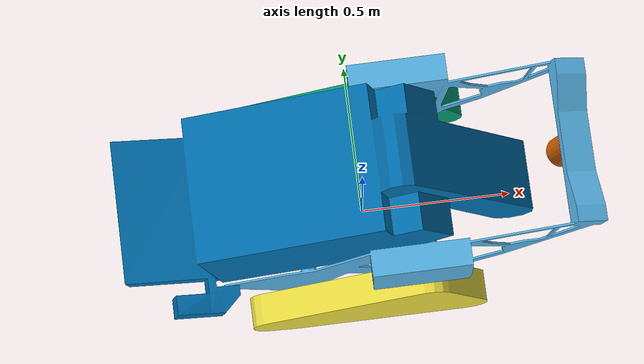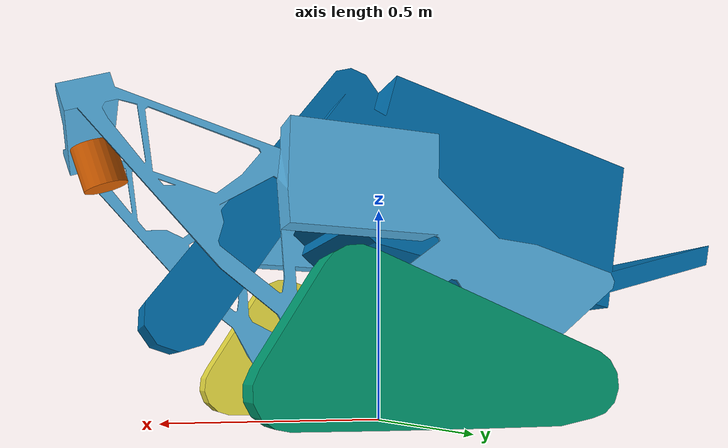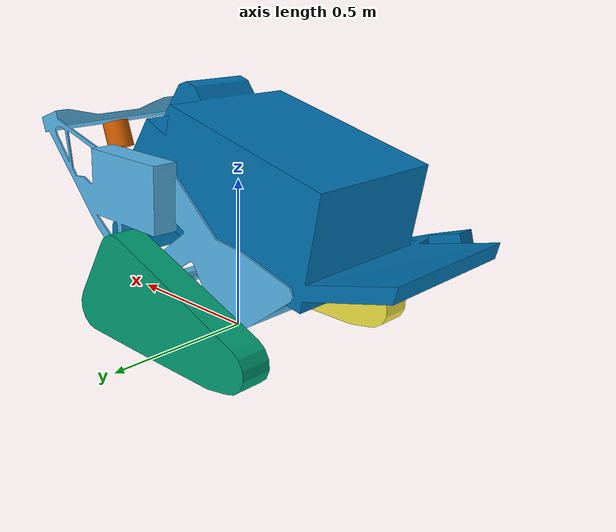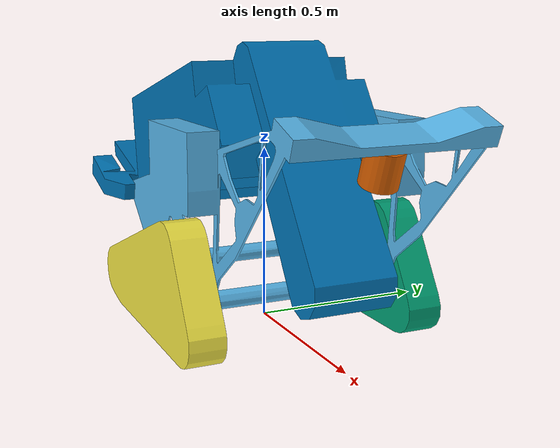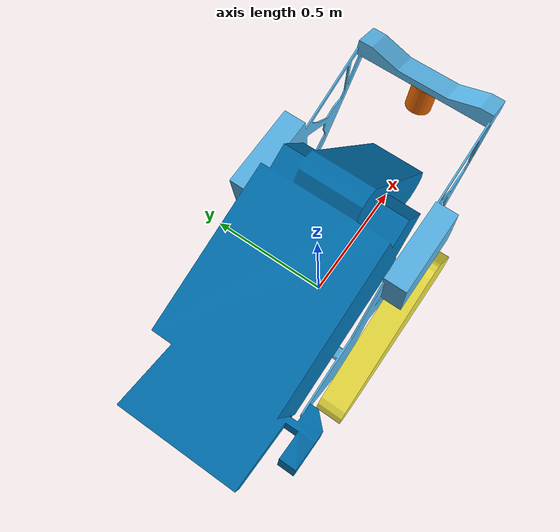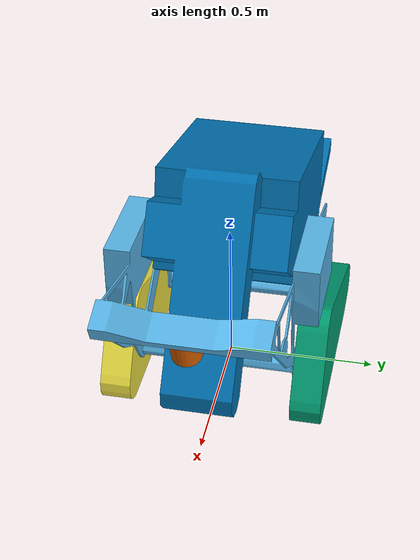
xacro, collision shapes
<?xml version="1.0"?>
<robot xmlns:xacro="http://www.ros.org/wiki/xacro">

	<link name = "base_link"></link>

<!-- FRAME -->
	<joint name = "frame_joint" type = "fixed">
		<parent link = "base_link"/>
		<child link = "frame_link"/>
		<origin xyz = "0 0 0.13103567"/>
	</joint>
	<link name = 'frame_link'>

		<inertial>
			<origin xyz = "0.101 0.001 0.214"/>
			<mass value="9.773"/>
			<inertia
				ixx = "1.358"
				ixy = "-0.001"
				ixz = "-0.418"
				iyy = "1.677"
				iyz = "0.000"
				izz = "1.579"
			/>
		</inertial>

		<visual name = 'frame_visual'>
			<geometry>
				<mesh filename = "file://$(find lance_sim)/description/meshes/lance-2024-frame.dae" />
			</geometry>
		</visual>

		<collision name = 'frame_collision'>
			<geometry>
				<mesh filename = "file://$(find lance_sim)/description/meshes/lance-2024-frame-collision.stl" />
			</geometry>
		</collision>

	</link>

<!-- LEFT TRACK -->
	<joint name = 'left_track_joint' type = 'fixed'>
		<parent link = "frame_link" />
		<child link = "left_track_link" />
		<origin xyz = "0.20318559 0.28988800 0.00242022"/>
	</joint>
	<link name = 'left_track_link'>

		<inertial>
			<origin xyz = "-0.162 0.015 0.021"/>
			<mass value="7.888"/>
			<inertia
				ixx = "0.103"
				ixy = "-0.014"
				ixz = "-0.049"
				iyy = "0.403"
				iyz = "0.014"
				izz = "0.331"
			/>
		</inertial>

		<visual name = 'left_track_visual'>
			<geometry>
				<mesh filename = "file://$(find lance_sim)/description/meshes/lance-2024-left-track.dae" />
			</geometry>
		</visual>

		<collision name = 'left_track_collision'>
			<geometry>
				<mesh filename = "file://$(find lance_sim)/description/meshes/lance-2024-left-track-collision.stl" />
			</geometry>
		</collision>
	</link>

<!-- RIGHT TRACK -->
	<joint name = 'right_track_joint' type = 'fixed'>
		<parent link = "frame_link" />
		<child link = "right_track_link" />
		<origin xyz = "0.20318559 -0.28988800 0.00242022"/>
	</joint>
	<link name = 'right_track_link'>

		<inertial>
			<origin xyz = "-0.162 -0.015 0.021"/>
			<mass value="7.888"/>
			<inertia
				ixx = "0.103"
				ixy = "-0.014"
				ixz = "-0.05"
				iyy = "0.403"
				iyz = "-0.013"
				izz = "0.331"
			/>
		</inertial>

		<visual name = 'right_track_visual'>
			<geometry>
				<mesh filename = "file://$(find lance_sim)/description/meshes/lance-2024-right-track.dae" />
			</geometry>
		</visual>

		<collision name = 'right_track_collision'>
			<geometry>
				<mesh filename = "file://$(find lance_sim)/description/meshes/lance-2024-right-track-collision.stl" />
			</geometry>
		</collision>
	</link>

<!-- Excavation and Dump Unit -->
	<joint name = 'dump_joint' type = 'revolute'>
		<parent link = "frame_link" />
		<child link = "collection_link" />

		<origin
			xyz = "-0.45721441 0 0.18580822"
			rpy = "0 -0.2617994 0"
		/>

		<axis xyz = "0 1 0" />
		<limit
			upper = "0.2617994"
			lower = "-0.2617994"
			effort = "100"
			velocity = "100"
		/>
		<dynamics damping = "0.0" friction = "0.0" />
	</joint>
	<link name = 'collection_link'>

		<inertial>
			<origin xyz = "0.417 -0.02 0.038"/>
			<mass value="20.499"/>
			<inertia
				ixx = "1.005"
				ixy = "-0.122"
				ixz = "-0.283"
				iyy = "2.472"
				iyz = "0.027"
				izz = "2.445"
			/>
		</inertial>

		<visual name = 'hopper_visual'>
			<geometry>
				<mesh filename = "file://$(find lance_sim)/description/meshes/lance-2024-hopper.dae" />
			</geometry>
		</visual>
		<visual name = 'collection_visual'>
			<geometry>
				<mesh filename = "file://$(find lance_sim)/description/meshes/lance-2024-collection.dae" />
			</geometry>
		</visual>

		<collision name = 'collection_collision'>
			<geometry>
				<mesh filename = "file://$(find lance_sim)/description/meshes/lance-2024-upper-collision.stl" />
			</geometry>
		</collision>
	</link>

<!-- LIDAR -->
	<joint name = 'lidar_joint' type = 'fixed'>
		<parent link = "frame_link" />
		<child link = "lidar_link" />
		<origin
			xyz = "0.64957717 0 0.42478867"
			rpy = "3.1415926 0.3490659 0"
		/>
	</joint>
	<link name = 'lidar_link'>

		<inertial>
			<origin xyz = "1.97e-5 -0.001 -0.009"/>
			<mass value="0.7"/>
			<inertia
				ixx = "0.001"
				ixy = "2e-8"
				ixz = "4e-7"
				iyy = "0.001"
				iyz = "-3e-5"
				izz = "0.001"
			/>
		</inertial>

		<visual name = 'lidar_visual'>
			<geometry>
				<mesh filename = "file://$(find lance_sim)/description/meshes/lance-2024-multiscan.dae" />
			</geometry>
		</visual>

		<collision name = 'lidar_collision'>
			<origin xzy = "0 0 -0.006" />
			<geometry>
				<cylinder
					radius = "0.048"
					length = "0.098"
				/>
			</geometry>
		</collision>

	</link>

</robot>
